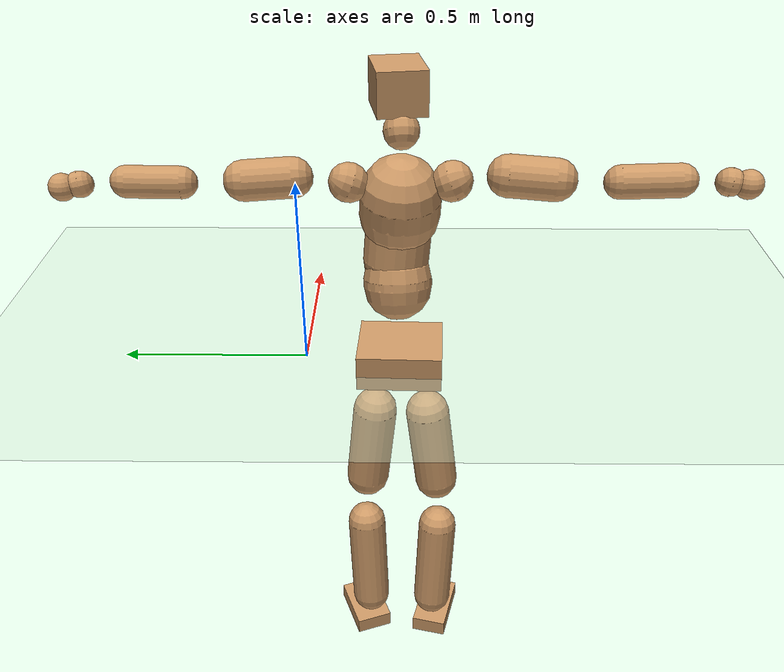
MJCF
<mujoco model="humanoid">
  <compiler coordinate="local" angle="radian"/>
  <default>
    <joint damping="0.0" armature="0.01" stiffness="0.0" limited="true"/>
    <geom conaffinity="1" condim="3" contype="7" margin="0.001" rgba="0.8 0.6 .4 1"/>
  </default>
  <asset>
    <texture type="skybox" builtin="gradient" rgb1=".4 .5 .6" rgb2="0 0 0" width="100" height="100"/>
    <texture builtin="flat" height="1278" mark="cross" markrgb="1 1 1" name="texgeom" random="0.01" rgb1="0.8 0.6 0.4" rgb2="0.8 0.6 0.4" type="cube" width="127"/>
    <texture builtin="checker" height="100" name="texplane" rgb1="0 0 0" rgb2="0.8 0.8 0.8" type="2d" width="100"/>
    <material name="MatPlane" reflectance="0.5" shininess="1" specular="1" texrepeat="60 60" texture="texplane"/>
    <material name="geom" texture="texgeom" texuniform="true"/>
  </asset>
  <worldbody>
    <light cutoff="100" diffuse="1 1 1" dir="-0 0 -1.3" directional="true" exponent="1" pos="0 0 1.3" specular=".1 .1 .1"/>
    <geom conaffinity="1" condim="3" name="floor" pos="0 0 0" rgba="0.8 0.9 0.8 1" size="100 100 .2" type="plane" material="MatPlane"/>
    <body name="Pelvis" pos="0.0036 -0.2595 0.016">
      <freejoint name="Pelvis"/>
      <geom type="box" contype="1" conaffinity="1" density="5359.374659" pos="-0.0110 0.0004 -0.0087" size="0.1007 0.1143 0.0489" quat="0.9998 0.0000 0.0000 -0.0174" name="Pelvis"/>
      <body name="L_Hip" pos="-0.0196 0.0628 -0.0927">
        <joint name="L_Hip_x" type="hinge" pos="0 0 0" axis="1 0 0" stiffness="1600" damping="160" armature="0.02" range="-180.0000 180.0000"/>
        <joint name="L_Hip_y" type="hinge" pos="0 0 0" axis="0 1 0" stiffness="1600" damping="160" armature="0.02" range="-180.0000 180.0000"/>
        <joint name="L_Hip_z" type="hinge" pos="0 0 0" axis="0 0 1" stiffness="1600" damping="160" armature="0.02" range="-180.0000 180.0000"/>
        <geom type="capsule" contype="1" conaffinity="1" density="2040.816327" size="0.0616" fromto="0.0004 0.0097 -0.0911 0.0014 0.0355 -0.3336" name="L_Hip"/>
        <body name="L_Knee" pos="0.0017 0.0452 -0.4247">
          <joint name="L_Knee_x" type="hinge" pos="0 0 0" axis="1 0 0" stiffness="1600" damping="160" armature="0.02" range="-180.0000 180.0000"/>
          <joint name="L_Knee_y" type="hinge" pos="0 0 0" axis="0 1 0" stiffness="1600" damping="160" armature="0.02" range="-180.0000 180.0000"/>
          <joint name="L_Knee_z" type="hinge" pos="0 0 0" axis="0 0 1" stiffness="1600" damping="160" armature="0.02" range="-180.0000 180.0000"/>
          <geom type="capsule" contype="1" conaffinity="1" density="1234.567901" size="0.0564" fromto="-0.0080 -0.0029 -0.0860 -0.0349 -0.0128 -0.3760" name="L_Knee"/>
          <body name="L_Ankle" pos="-0.0429 -0.0158 -0.462">
            <joint name="L_Ankle_x" type="hinge" pos="0 0 0" axis="1 0 0" stiffness="1600" damping="160" armature="0.02" range="-180.0000 180.0000"/>
            <joint name="L_Ankle_y" type="hinge" pos="0 0 0" axis="0 1 0" stiffness="1600" damping="160" armature="0.02" range="-180.0000 180.0000"/>
            <joint name="L_Ankle_z" type="hinge" pos="0 0 0" axis="0 0 1" stiffness="1600" damping="160" armature="0.02" range="-180.0000 180.0000"/>
            <geom type="box" contype="1" conaffinity="1" density="999.99995" pos="0.0628 0.0236 -0.0322" size="0.0863 0.0547 0.0243" quat="0.9839 0.0000 0.0000 0.1786" name="L_Ankle"/>
            <body name="L_Toe" pos="0.1255 0.0471 -0.0644">
              <joint name="L_Toe_x" type="hinge" pos="0 0 0" axis="1 0 0" stiffness="1000" damping="100" armature="0.02" range="-180.0000 180.0000"/>
              <joint name="L_Toe_y" type="hinge" pos="0 0 0" axis="0 1 0" stiffness="1000" damping="100" armature="0.02" range="-180.0000 180.0000"/>
              <joint name="L_Toe_z" type="hinge" pos="0 0 0" axis="0 0 1" stiffness="1000" damping="100" armature="0.02" range="-180.0000 180.0000"/>
              <geom type="box" contype="1" conaffinity="1" density="7606011.734803" pos="0.0000 0.0000 0.0341" size="0.001 0.0025 0.0013" quat="0.9832 0.0000 0.0000 0.1828" name="L_Toe"/>
            </body>
          </body>
        </body>
      </body>
      <body name="R_Hip" pos="-0.0146 -0.0656 -0.1031">
        <joint name="R_Hip_x" type="hinge" pos="0 0 0" axis="1 0 0" stiffness="1600" damping="160" armature="0.02" range="-180.0000 180.0000"/>
        <joint name="R_Hip_y" type="hinge" pos="0 0 0" axis="0 1 0" stiffness="1600" damping="160" armature="0.02" range="-180.0000 180.0000"/>
        <joint name="R_Hip_z" type="hinge" pos="0 0 0" axis="0 0 1" stiffness="1600" damping="160" armature="0.02" range="-180.0000 180.0000"/>
        <geom type="capsule" contype="1" conaffinity="1" density="2040.816327" size="0.0618" fromto="-0.0022 -0.0112 -0.0911 -0.0080 -0.0408 -0.3317" name="R_Hip"/>
        <body name="R_Knee" pos="-0.0103 -0.052 -0.4227">
          <joint name="R_Knee_x" type="hinge" pos="0 0 0" axis="1 0 0" stiffness="1600" damping="160" armature="0.02" range="-180.0000 180.0000"/>
          <joint name="R_Knee_y" type="hinge" pos="0 0 0" axis="0 1 0" stiffness="1600" damping="160" armature="0.02" range="-180.0000 180.0000"/>
          <joint name="R_Knee_z" type="hinge" pos="0 0 0" axis="0 0 1" stiffness="1600" damping="160" armature="0.02" range="-180.0000 180.0000"/>
          <geom type="capsule" contype="1" conaffinity="1" density="1234.567901" size="0.0568" fromto="-0.0074 0.0039 -0.0864 -0.0319 0.0167 -0.3711" name="R_Knee"/>
          <body name="R_Ankle" pos="-0.0393 0.0206 -0.4575">
            <joint name="R_Ankle_x" type="hinge" pos="0 0 0" axis="1 0 0" stiffness="1600" damping="160" armature="0.02" range="-180.0000 180.0000"/>
            <joint name="R_Ankle_y" type="hinge" pos="0 0 0" axis="0 1 0" stiffness="1600" damping="160" armature="0.02" range="-180.0000 180.0000"/>
            <joint name="R_Ankle_z" type="hinge" pos="0 0 0" axis="0 0 1" stiffness="1600" damping="160" armature="0.02" range="-180.0000 180.0000"/>
            <geom type="box" contype="1" conaffinity="1" density="1000.000074" pos="0.0678 -0.0168 -0.0341" size="0.0946 0.0519 0.025" quat="0.9927 0.0000 0.0000 -0.1209" name="R_Ankle"/>
            <body name="R_Toe" pos="0.1357 -0.0335 -0.0683">
              <joint name="R_Toe_x" type="hinge" pos="0 0 0" axis="1 0 0" stiffness="1000" damping="100" armature="0.02" range="-180.0000 180.0000"/>
              <joint name="R_Toe_y" type="hinge" pos="0 0 0" axis="0 1 0" stiffness="1000" damping="100" armature="0.02" range="-180.0000 180.0000"/>
              <joint name="R_Toe_z" type="hinge" pos="0 0 0" axis="0 0 1" stiffness="1000" damping="100" armature="0.02" range="-180.0000 180.0000"/>
              <geom type="box" contype="1" conaffinity="1" density="7776997.176346" pos="0.0000 0.0000 0.0369" size="0.0011 0.0025 0.0014" quat="0.9937 0.0000 0.0000 -0.1123" name="R_Toe"/>
            </body>
          </body>
        </body>
      </body>
      <body name="Torso" pos="-0.0315 0.0051 0.1436">
        <joint name="Torso_x" type="hinge" pos="0 0 0" axis="1 0 0" stiffness="2000" damping="200" armature="0.02" range="-180.0000 180.0000"/>
        <joint name="Torso_y" type="hinge" pos="0 0 0" axis="0 1 0" stiffness="2000" damping="200" armature="0.02" range="-180.0000 180.0000"/>
        <joint name="Torso_z" type="hinge" pos="0 0 0" axis="0 0 1" stiffness="2000" damping="200" armature="0.02" range="-180.0000 180.0000"/>
        <geom type="capsule" contype="1" conaffinity="1" density="2040.816327" size="0.0896" fromto="0.0222 0.0028 0.0867 0.0169 0.0021 0.0658" name="Torso"/>
        <body name="Spine" pos="0.0391 0.005 0.1525">
          <joint name="Spine_x" type="hinge" pos="0 0 0" axis="1 0 0" stiffness="2000" damping="200" armature="0.02" range="-180.0000 180.0000"/>
          <joint name="Spine_y" type="hinge" pos="0 0 0" axis="0 1 0" stiffness="2000" damping="200" armature="0.02" range="-180.0000 180.0000"/>
          <joint name="Spine_z" type="hinge" pos="0 0 0" axis="0 0 1" stiffness="2000" damping="200" armature="0.02" range="-180.0000 180.0000"/>
          <geom type="capsule" contype="1" conaffinity="1" density="2040.816327" size="0.085" fromto="0.0050 -0.0072 0.0846 -0.0014 0.0020 -0.0241" name="Spine"/>
          <body name="Chest" pos="0.0036 -0.0051 0.0604">
            <joint name="Chest_x" type="hinge" pos="0 0 0" axis="1 0 0" stiffness="2000" damping="200" armature="0.02" range="-180.0000 180.0000"/>
            <joint name="Chest_y" type="hinge" pos="0 0 0" axis="0 1 0" stiffness="2000" damping="200" armature="0.02" range="-180.0000 180.0000"/>
            <joint name="Chest_z" type="hinge" pos="0 0 0" axis="0 0 1" stiffness="2000" damping="200" armature="0.02" range="-180.0000 180.0000"/>
            <geom type="capsule" contype="1" conaffinity="1" density="2040.816327" size="0.1026" fromto="-0.0205 -0.0054 0.1004 -0.0103 -0.0027 0.0507" name="Chest"/>
            <body name="Neck" pos="-0.0381 -0.0113 0.2158">
              <joint name="Neck_x" type="hinge" pos="0 0 0" axis="1 0 0" stiffness="1000" damping="100" armature="0.02" range="-180.0000 180.0000"/>
              <joint name="Neck_y" type="hinge" pos="0 0 0" axis="0 1 0" stiffness="1000" damping="100" armature="0.02" range="-180.0000 180.0000"/>
              <joint name="Neck_z" type="hinge" pos="0 0 0" axis="0 0 1" stiffness="1000" damping="100" armature="0.02" range="-180.0000 180.0000"/>
              <geom type="capsule" contype="1" conaffinity="1" density="1000" size="0.0449" fromto="0.0274 0.0037 0.0431 0.0284 0.0038 0.0448" name="Neck"/>
              <body name="Head" pos="0.0558 0.0075 0.0879">
                <joint name="Head_x" type="hinge" pos="0 0 0" axis="1 0 0" stiffness="1000" damping="100" armature="0.02" range="-180.0000 180.0000"/>
                <joint name="Head_y" type="hinge" pos="0 0 0" axis="0 1 0" stiffness="1000" damping="100" armature="0.02" range="-180.0000 180.0000"/>
                <joint name="Head_z" type="hinge" pos="0 0 0" axis="0 0 1" stiffness="1000" damping="100" armature="0.02" range="-180.0000 180.0000"/>
                <geom type="box" contype="1" conaffinity="1" density="2249.999947" pos="0.0289 0.0048 0.0450" size="0.0769 0.0622 0.0542" quat="0.9967 0.0000 0.0000 0.0814" name="Head"/>
              </body>
            </body>
            <body name="L_Thorax" pos="-0.028 0.0673 0.1184">
              <joint name="L_Thorax_x" type="hinge" pos="0 0 0" axis="1 0 0" stiffness="1000" damping="100" armature="0.02" range="-180.0000 180.0000"/>
              <joint name="L_Thorax_y" type="hinge" pos="0 0 0" axis="0 1 0" stiffness="1000" damping="100" armature="0.02" range="-180.0000 180.0000"/>
              <joint name="L_Thorax_z" type="hinge" pos="0 0 0" axis="0 0 1" stiffness="1000" damping="100" armature="0.02" range="-180.0000 180.0000"/>
              <geom type="capsule" contype="1" conaffinity="1" density="1000" size="0.0491" fromto="-0.0081 0.0529 0.0210 -0.0084 0.0547 0.0218" name="L_Thorax"/>
              <body name="L_Shoulder" pos="-0.0165 0.1077 0.0428">
                <joint name="L_Shoulder_x" type="hinge" pos="0 0 0" axis="1 0 0" stiffness="1000" damping="100" armature="0.02" range="-720.0000 720.0000"/>
                <joint name="L_Shoulder_y" type="hinge" pos="0 0 0" axis="0 1 0" stiffness="1000" damping="100" armature="0.02" range="-720.0000 720.0000"/>
                <joint name="L_Shoulder_z" type="hinge" pos="0 0 0" axis="0 0 1" stiffness="1000" damping="100" armature="0.02" range="-720.0000 720.0000"/>
                <geom type="capsule" contype="1" conaffinity="1" density="1000" size="0.0501" fromto="-0.0042 0.0799 -0.0042 -0.0104 0.1979 -0.0105" name="L_Shoulder"/>
                <body name="L_Elbow" pos="-0.0146 0.2778 -0.0147">
                  <joint name="L_Elbow_x" type="hinge" pos="0 0 0" axis="1 0 0" stiffness="1000" damping="100" armature="0.02" range="-720.0000 720.0000"/>
                  <joint name="L_Elbow_y" type="hinge" pos="0 0 0" axis="0 1 0" stiffness="1000" damping="100" armature="0.02" range="-720.0000 720.0000"/>
                  <joint name="L_Elbow_z" type="hinge" pos="0 0 0" axis="0 0 1" stiffness="1000" damping="100" armature="0.02" range="-720.0000 720.0000"/>
                  <geom type="capsule" contype="1" conaffinity="1" density="1000" size="0.0394" fromto="-0.0038 0.0692 0.0023 -0.0109 0.1991 0.0068" name="L_Elbow"/>
                  <body name="L_Wrist" pos="-0.0147 0.2684 0.0091">
                    <joint name="L_Wrist_x" type="hinge" pos="0 0 0" axis="1 0 0" stiffness="600" damping="60" armature="0.02" range="-180.0000 180.0000"/>
                    <joint name="L_Wrist_y" type="hinge" pos="0 0 0" axis="0 1 0" stiffness="600" damping="60" armature="0.02" range="-180.0000 180.0000"/>
                    <joint name="L_Wrist_z" type="hinge" pos="0 0 0" axis="0 0 1" stiffness="600" damping="60" armature="0.02" range="-180.0000 180.0000"/>
                    <geom type="capsule" contype="1" conaffinity="1" density="1000" size="0.0323" fromto="-0.0073 0.0396 -0.0045 -0.0077 0.0415 -0.0048" name="L_Wrist"/>
                    <body name="L_Hand" pos="-0.015 0.0811 -0.0093">
                      <joint name="L_Hand_x" type="hinge" pos="0 0 0" axis="1 0 0" stiffness="600" damping="60" armature="0.02" range="-180.0000 180.0000"/>
                      <joint name="L_Hand_y" type="hinge" pos="0 0 0" axis="0 1 0" stiffness="600" damping="60" armature="0.02" range="-180.0000 180.0000"/>
                      <joint name="L_Hand_z" type="hinge" pos="0 0 0" axis="0 0 1" stiffness="600" damping="60" armature="0.02" range="-180.0000 180.0000"/>
                      <geom type="sphere" contype="1" conaffinity="1" density="1000" size="0.0334" pos="0.0000 0.0000 0.0000" name="L_Hand"/>
                    </body>
                  </body>
                </body>
              </body>
            </body>
            <body name="R_Thorax" pos="-0.0264 -0.0804 0.1193">
              <joint name="R_Thorax_x" type="hinge" pos="0 0 0" axis="1 0 0" stiffness="1000" damping="100" armature="0.02" range="-180.0000 180.0000"/>
              <joint name="R_Thorax_y" type="hinge" pos="0 0 0" axis="0 1 0" stiffness="1000" damping="100" armature="0.02" range="-180.0000 180.0000"/>
              <joint name="R_Thorax_z" type="hinge" pos="0 0 0" axis="0 0 1" stiffness="1000" damping="100" armature="0.02" range="-180.0000 180.0000"/>
              <geom type="capsule" contype="1" conaffinity="1" density="1000" size="0.0504" fromto="-0.0023 -0.0512 0.0214 -0.0024 -0.0531 0.0222" name="R_Thorax"/>
              <body name="R_Shoulder" pos="-0.0047 -0.1043 0.0436">
                <joint name="R_Shoulder_x" type="hinge" pos="0 0 0" axis="1 0 0" stiffness="1000" damping="100" armature="0.02" range="-720.0000 720.0000"/>
                <joint name="R_Shoulder_y" type="hinge" pos="0 0 0" axis="0 1 0" stiffness="1000" damping="100" armature="0.02" range="-720.0000 720.0000"/>
                <joint name="R_Shoulder_z" type="hinge" pos="0 0 0" axis="0 0 1" stiffness="1000" damping="100" armature="0.02" range="-720.0000 720.0000"/>
                <geom type="capsule" contype="1" conaffinity="1" density="1000" size="0.0528" fromto="-0.0063 -0.0824 -0.0046 -0.0152 -0.1974 -0.0110" name="R_Shoulder"/>
                <body name="R_Elbow" pos="-0.0216 -0.2799 -0.0156">
                  <joint name="R_Elbow_x" type="hinge" pos="0 0 0" axis="1 0 0" stiffness="1000" damping="100" armature="0.02" range="-720.0000 720.0000"/>
                  <joint name="R_Elbow_y" type="hinge" pos="0 0 0" axis="0 1 0" stiffness="1000" damping="100" armature="0.02" range="-720.0000 720.0000"/>
                  <joint name="R_Elbow_z" type="hinge" pos="0 0 0" axis="0 0 1" stiffness="1000" damping="100" armature="0.02" range="-720.0000 720.0000"/>
                  <geom type="capsule" contype="1" conaffinity="1" density="1000" size="0.0416" fromto="-0.0035 -0.0714 0.0037 -0.0105 -0.2136 0.0109" name="R_Elbow"/>
                  <body name="R_Wrist" pos="-0.014 -0.285 0.0146">
                    <joint name="R_Wrist_x" type="hinge" pos="0 0 0" axis="1 0 0" stiffness="600" damping="60" armature="0.02" range="-180.0000 180.0000"/>
                    <joint name="R_Wrist_y" type="hinge" pos="0 0 0" axis="0 1 0" stiffness="600" damping="60" armature="0.02" range="-180.0000 180.0000"/>
                    <joint name="R_Wrist_z" type="hinge" pos="0 0 0" axis="0 0 1" stiffness="600" damping="60" armature="0.02" range="-180.0000 180.0000"/>
                    <geom type="capsule" contype="1" conaffinity="1" density="1000" size="0.0346" fromto="-0.0047 -0.0428 -0.0039 -0.0049 -0.0448 -0.0041" name="R_Wrist"/>
                    <body name="R_Hand" pos="-0.0096 -0.0877 -0.008">
                      <joint name="R_Hand_x" type="hinge" pos="0 0 0" axis="1 0 0" stiffness="600" damping="60" armature="0.02" range="-180.0000 180.0000"/>
                      <joint name="R_Hand_y" type="hinge" pos="0 0 0" axis="0 1 0" stiffness="600" damping="60" armature="0.02" range="-180.0000 180.0000"/>
                      <joint name="R_Hand_z" type="hinge" pos="0 0 0" axis="0 0 1" stiffness="600" damping="60" armature="0.02" range="-180.0000 180.0000"/>
                      <geom type="sphere" contype="1" conaffinity="1" density="1000" size="0.0357" pos="0.0000 0.0000 0.0000" name="R_Hand"/>
                    </body>
                  </body>
                </body>
              </body>
            </body>
          </body>
        </body>
      </body>
    </body>
  </worldbody>
  <actuator>
    <motor name="L_Hip_x" joint="L_Hip_x" gear="500"/>
    <motor name="L_Hip_y" joint="L_Hip_y" gear="500"/>
    <motor name="L_Hip_z" joint="L_Hip_z" gear="500"/>
    <motor name="L_Knee_x" joint="L_Knee_x" gear="500"/>
    <motor name="L_Knee_y" joint="L_Knee_y" gear="500"/>
    <motor name="L_Knee_z" joint="L_Knee_z" gear="500"/>
    <motor name="L_Ankle_x" joint="L_Ankle_x" gear="500"/>
    <motor name="L_Ankle_y" joint="L_Ankle_y" gear="500"/>
    <motor name="L_Ankle_z" joint="L_Ankle_z" gear="500"/>
    <motor name="L_Toe_x" joint="L_Toe_x" gear="500"/>
    <motor name="L_Toe_y" joint="L_Toe_y" gear="500"/>
    <motor name="L_Toe_z" joint="L_Toe_z" gear="500"/>
    <motor name="R_Hip_x" joint="R_Hip_x" gear="500"/>
    <motor name="R_Hip_y" joint="R_Hip_y" gear="500"/>
    <motor name="R_Hip_z" joint="R_Hip_z" gear="500"/>
    <motor name="R_Knee_x" joint="R_Knee_x" gear="500"/>
    <motor name="R_Knee_y" joint="R_Knee_y" gear="500"/>
    <motor name="R_Knee_z" joint="R_Knee_z" gear="500"/>
    <motor name="R_Ankle_x" joint="R_Ankle_x" gear="500"/>
    <motor name="R_Ankle_y" joint="R_Ankle_y" gear="500"/>
    <motor name="R_Ankle_z" joint="R_Ankle_z" gear="500"/>
    <motor name="R_Toe_x" joint="R_Toe_x" gear="500"/>
    <motor name="R_Toe_y" joint="R_Toe_y" gear="500"/>
    <motor name="R_Toe_z" joint="R_Toe_z" gear="500"/>
    <motor name="Torso_x" joint="Torso_x" gear="500"/>
    <motor name="Torso_y" joint="Torso_y" gear="500"/>
    <motor name="Torso_z" joint="Torso_z" gear="500"/>
    <motor name="Spine_x" joint="Spine_x" gear="500"/>
    <motor name="Spine_y" joint="Spine_y" gear="500"/>
    <motor name="Spine_z" joint="Spine_z" gear="500"/>
    <motor name="Chest_x" joint="Chest_x" gear="500"/>
    <motor name="Chest_y" joint="Chest_y" gear="500"/>
    <motor name="Chest_z" joint="Chest_z" gear="500"/>
    <motor name="Neck_x" joint="Neck_x" gear="500"/>
    <motor name="Neck_y" joint="Neck_y" gear="500"/>
    <motor name="Neck_z" joint="Neck_z" gear="500"/>
    <motor name="Head_x" joint="Head_x" gear="500"/>
    <motor name="Head_y" joint="Head_y" gear="500"/>
    <motor name="Head_z" joint="Head_z" gear="500"/>
    <motor name="L_Thorax_x" joint="L_Thorax_x" gear="500"/>
    <motor name="L_Thorax_y" joint="L_Thorax_y" gear="500"/>
    <motor name="L_Thorax_z" joint="L_Thorax_z" gear="500"/>
    <motor name="L_Shoulder_x" joint="L_Shoulder_x" gear="500"/>
    <motor name="L_Shoulder_y" joint="L_Shoulder_y" gear="500"/>
    <motor name="L_Shoulder_z" joint="L_Shoulder_z" gear="500"/>
    <motor name="L_Elbow_x" joint="L_Elbow_x" gear="500"/>
    <motor name="L_Elbow_y" joint="L_Elbow_y" gear="500"/>
    <motor name="L_Elbow_z" joint="L_Elbow_z" gear="500"/>
    <motor name="L_Wrist_x" joint="L_Wrist_x" gear="500"/>
    <motor name="L_Wrist_y" joint="L_Wrist_y" gear="500"/>
    <motor name="L_Wrist_z" joint="L_Wrist_z" gear="500"/>
    <motor name="L_Hand_x" joint="L_Hand_x" gear="500"/>
    <motor name="L_Hand_y" joint="L_Hand_y" gear="500"/>
    <motor name="L_Hand_z" joint="L_Hand_z" gear="500"/>
    <motor name="R_Thorax_x" joint="R_Thorax_x" gear="500"/>
    <motor name="R_Thorax_y" joint="R_Thorax_y" gear="500"/>
    <motor name="R_Thorax_z" joint="R_Thorax_z" gear="500"/>
    <motor name="R_Shoulder_x" joint="R_Shoulder_x" gear="500"/>
    <motor name="R_Shoulder_y" joint="R_Shoulder_y" gear="500"/>
    <motor name="R_Shoulder_z" joint="R_Shoulder_z" gear="500"/>
    <motor name="R_Elbow_x" joint="R_Elbow_x" gear="500"/>
    <motor name="R_Elbow_y" joint="R_Elbow_y" gear="500"/>
    <motor name="R_Elbow_z" joint="R_Elbow_z" gear="500"/>
    <motor name="R_Wrist_x" joint="R_Wrist_x" gear="500"/>
    <motor name="R_Wrist_y" joint="R_Wrist_y" gear="500"/>
    <motor name="R_Wrist_z" joint="R_Wrist_z" gear="500"/>
    <motor name="R_Hand_x" joint="R_Hand_x" gear="500"/>
    <motor name="R_Hand_y" joint="R_Hand_y" gear="500"/>
    <motor name="R_Hand_z" joint="R_Hand_z" gear="500"/>
  </actuator>
  <contact>
    <exclude body1="Torso" body2="Chest"/>
    <exclude body1="Head" body2="Chest"/>
    <exclude body1="R_Knee" body2="R_Toe"/>
    <exclude body1="R_Knee" body2="L_Ankle"/>
    <exclude body1="R_Knee" body2="L_Toe"/>
    <exclude body1="L_Knee" body2="L_Toe"/>
    <exclude body1="L_Knee" body2="R_Ankle"/>
    <exclude body1="L_Knee" body2="R_Toe"/>
    <exclude body1="L_Shoulder" body2="Chest"/>
    <exclude body1="R_Shoulder" body2="Chest"/>
  </contact>
  <sensor/>
  <size njmax="700" nconmax="700"/>
</mujoco>
